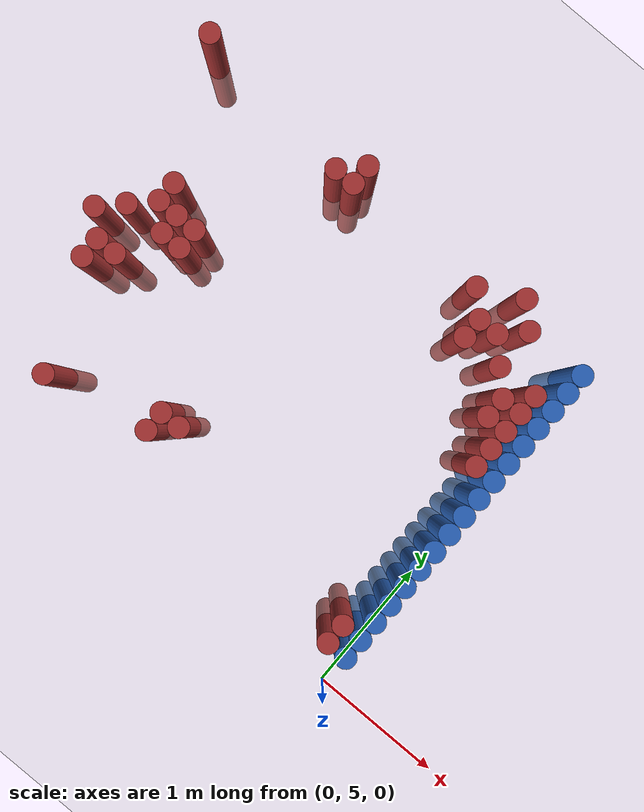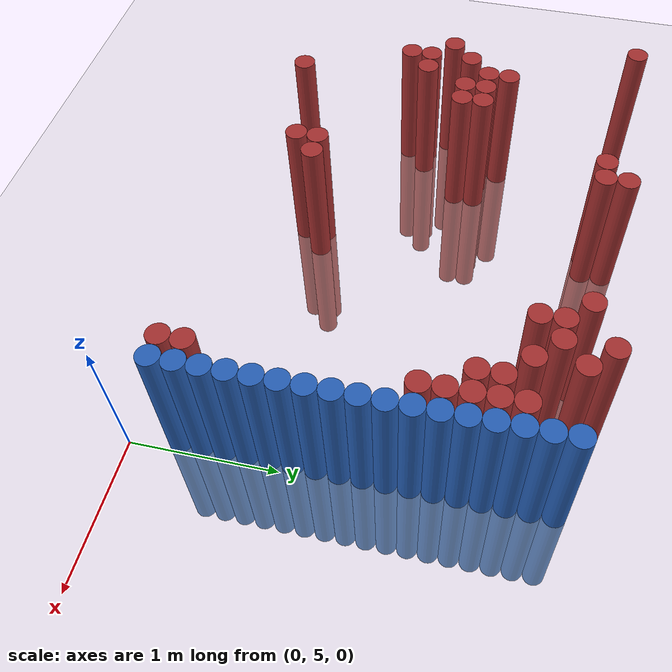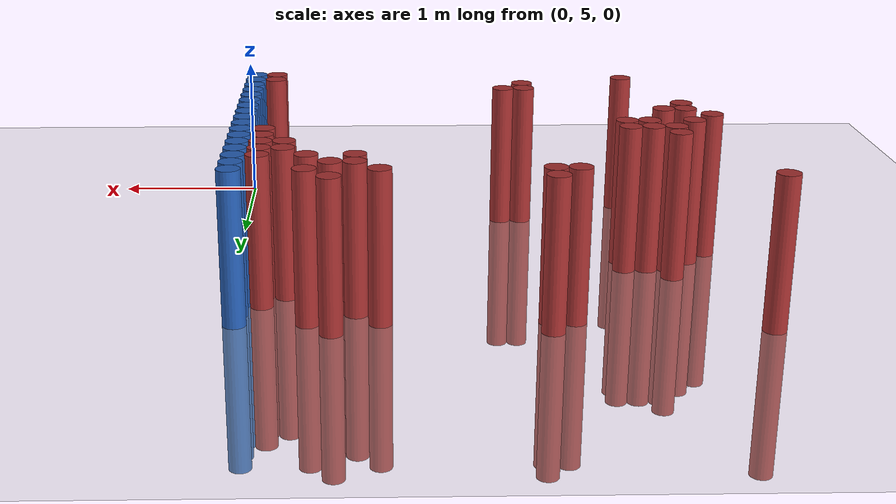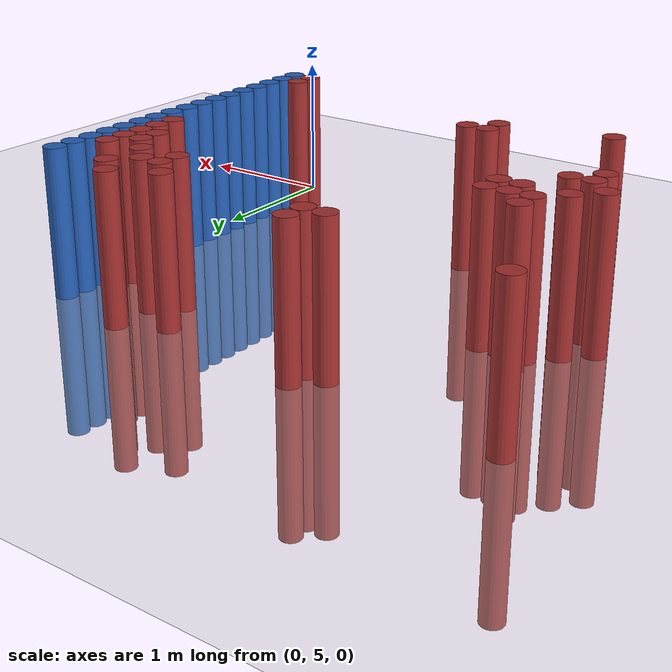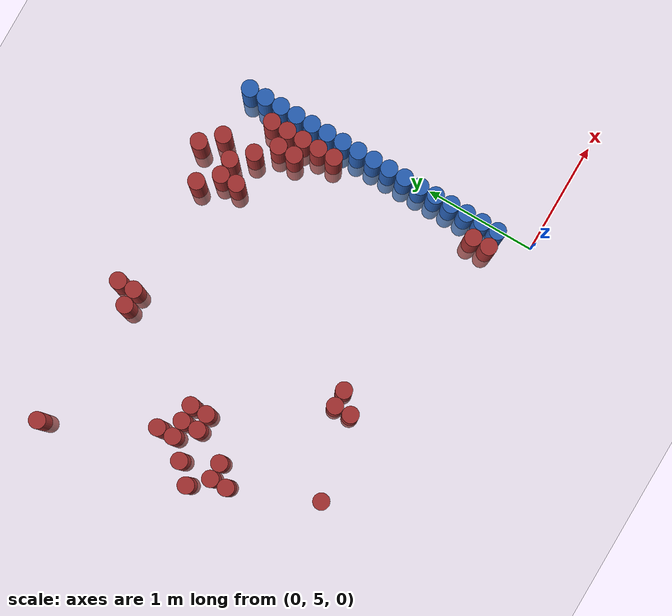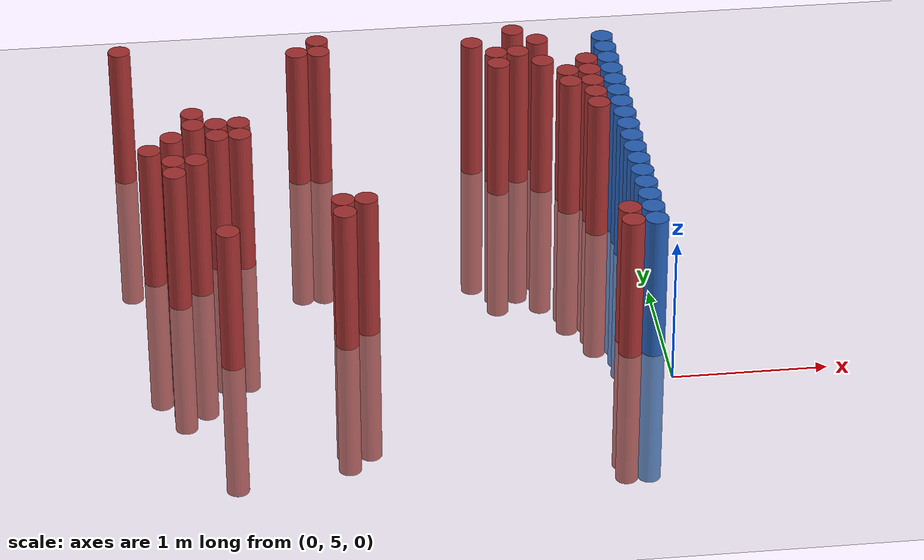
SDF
<sdf version="1.6">
 <world name="default">
  <model name="ground_plane">
   <static>1</static>
   <link name="link">
    <collision name="collision">
     <geometry><plane><normal>0 0 1</normal><size>100 100</size></plane></geometry>
     <surface><friction><ode><mu>100</mu><mu2>50</mu2></ode></friction></surface>
    </collision>
    <visual name="visual">
     <cast_shadows>0</cast_shadows>
     <geometry><plane><normal>0 0 1</normal><size>100 100</size></plane></geometry>
     <material>
      <script><uri>file://media/materials/scripts/gazebo.material</uri><name>Gazebo/Grey</name></script>
     </material>
    </visual>
   </link>
  </model>
  <model name="unit_cylinder_155">
   <static>1</static>
   <pose>-3.375000 7.875000 0.000000 0.000000 0.000000 0.000000</pose>
   <link name="link">
    <inertial>
     <mass>1</mass>
     <inertia><ixx>0.145833</ixx><ixy>0</ixy><ixz>0</ixz><iyy>0.145833</iyy><iyz>0</iyz><izz>0.125</izz></inertia>
    </inertial>
    <collision name="collision">
     <geometry><cylinder><radius>0.075000</radius><length>2</length></cylinder></geometry>
    </collision>
    <visual name="visual">
     <geometry><cylinder><radius>0.075000</radius><length>2</length></cylinder></geometry>
     <material>
      <ambient>0.648000 0.192000 0.192000 1</ambient>
      <diffuse>0.648000 0.192000 0.192000 1</diffuse>
     </material>
     <material>
      <script><name>Gazebo/Grey</name><uri>file://media/materials/scripts/gazebo.material</uri></script>
     </material>
    </visual>
   </link>
  </model>
  <model name="unit_cylinder_159">
   <static>1</static>
   <pose>-3.225000 6.525000 0.000000 0.000000 0.000000 0.000000</pose>
   <link name="link">
    <inertial>
     <mass>1</mass>
     <inertia><ixx>0.145833</ixx><ixy>0</ixy><ixz>0</ixz><iyy>0.145833</iyy><iyz>0</iyz><izz>0.125</izz></inertia>
    </inertial>
    <collision name="collision">
     <geometry><cylinder><radius>0.075000</radius><length>2</length></cylinder></geometry>
    </collision>
    <visual name="visual">
     <geometry><cylinder><radius>0.075000</radius><length>2</length></cylinder></geometry>
     <material>
      <ambient>0.648000 0.192000 0.192000 1</ambient>
      <diffuse>0.648000 0.192000 0.192000 1</diffuse>
     </material>
     <material>
      <script><name>Gazebo/Grey</name><uri>file://media/materials/scripts/gazebo.material</uri></script>
     </material>
    </visual>
   </link>
  </model>
  <model name="unit_cylinder_163">
   <static>1</static>
   <pose>-3.075000 6.225000 0.000000 0.000000 0.000000 0.000000</pose>
   <link name="link">
    <inertial>
     <mass>1</mass>
     <inertia><ixx>0.145833</ixx><ixy>0</ixy><ixz>0</ixz><iyy>0.145833</iyy><iyz>0</iyz><izz>0.125</izz></inertia>
    </inertial>
    <collision name="collision">
     <geometry><cylinder><radius>0.075000</radius><length>2</length></cylinder></geometry>
    </collision>
    <visual name="visual">
     <geometry><cylinder><radius>0.075000</radius><length>2</length></cylinder></geometry>
     <material>
      <ambient>0.648000 0.192000 0.192000 1</ambient>
      <diffuse>0.648000 0.192000 0.192000 1</diffuse>
     </material>
     <material>
      <script><name>Gazebo/Grey</name><uri>file://media/materials/scripts/gazebo.material</uri></script>
     </material>
    </visual>
   </link>
  </model>
  <model name="unit_cylinder_164">
   <static>1</static>
   <pose>-3.075000 6.375000 0.000000 0.000000 0.000000 0.000000</pose>
   <link name="link">
    <inertial>
     <mass>1</mass>
     <inertia><ixx>0.145833</ixx><ixy>0</ixy><ixz>0</ixz><iyy>0.145833</iyy><iyz>0</iyz><izz>0.125</izz></inertia>
    </inertial>
    <collision name="collision">
     <geometry><cylinder><radius>0.075000</radius><length>2</length></cylinder></geometry>
    </collision>
    <visual name="visual">
     <geometry><cylinder><radius>0.075000</radius><length>2</length></cylinder></geometry>
     <material>
      <ambient>0.648000 0.192000 0.192000 1</ambient>
      <diffuse>0.648000 0.192000 0.192000 1</diffuse>
     </material>
     <material>
      <script><name>Gazebo/Grey</name><uri>file://media/materials/scripts/gazebo.material</uri></script>
     </material>
    </visual>
   </link>
  </model>
  <model name="unit_cylinder_165">
   <static>1</static>
   <pose>-3.075000 6.675000 0.000000 0.000000 0.000000 0.000000</pose>
   <link name="link">
    <inertial>
     <mass>1</mass>
     <inertia><ixx>0.145833</ixx><ixy>0</ixy><ixz>0</ixz><iyy>0.145833</iyy><iyz>0</iyz><izz>0.125</izz></inertia>
    </inertial>
    <collision name="collision">
     <geometry><cylinder><radius>0.075000</radius><length>2</length></cylinder></geometry>
    </collision>
    <visual name="visual">
     <geometry><cylinder><radius>0.075000</radius><length>2</length></cylinder></geometry>
     <material>
      <ambient>0.648000 0.192000 0.192000 1</ambient>
      <diffuse>0.648000 0.192000 0.192000 1</diffuse>
     </material>
     <material>
      <script><name>Gazebo/Grey</name><uri>file://media/materials/scripts/gazebo.material</uri></script>
     </material>
    </visual>
   </link>
  </model>
  <model name="unit_cylinder_169">
   <static>1</static>
   <pose>-2.925000 6.375000 0.000000 0.000000 0.000000 0.000000</pose>
   <link name="link">
    <inertial>
     <mass>1</mass>
     <inertia><ixx>0.145833</ixx><ixy>0</ixy><ixz>0</ixz><iyy>0.145833</iyy><iyz>0</iyz><izz>0.125</izz></inertia>
    </inertial>
    <collision name="collision">
     <geometry><cylinder><radius>0.075000</radius><length>2</length></cylinder></geometry>
    </collision>
    <visual name="visual">
     <geometry><cylinder><radius>0.075000</radius><length>2</length></cylinder></geometry>
     <material>
      <ambient>0.648000 0.192000 0.192000 1</ambient>
      <diffuse>0.648000 0.192000 0.192000 1</diffuse>
     </material>
     <material>
      <script><name>Gazebo/Grey</name><uri>file://media/materials/scripts/gazebo.material</uri></script>
     </material>
    </visual>
   </link>
  </model>
  <model name="unit_cylinder_170">
   <static>1</static>
   <pose>-2.925000 6.825000 0.000000 0.000000 0.000000 0.000000</pose>
   <link name="link">
    <inertial>
     <mass>1</mass>
     <inertia><ixx>0.145833</ixx><ixy>0</ixy><ixz>0</ixz><iyy>0.145833</iyy><iyz>0</iyz><izz>0.125</izz></inertia>
    </inertial>
    <collision name="collision">
     <geometry><cylinder><radius>0.075000</radius><length>2</length></cylinder></geometry>
    </collision>
    <visual name="visual">
     <geometry><cylinder><radius>0.075000</radius><length>2</length></cylinder></geometry>
     <material>
      <ambient>0.648000 0.192000 0.192000 1</ambient>
      <diffuse>0.648000 0.192000 0.192000 1</diffuse>
     </material>
     <material>
      <script><name>Gazebo/Grey</name><uri>file://media/materials/scripts/gazebo.material</uri></script>
     </material>
    </visual>
   </link>
  </model>
  <model name="unit_cylinder_171">
   <static>1</static>
   <pose>-2.925000 6.975000 0.000000 0.000000 0.000000 0.000000</pose>
   <link name="link">
    <inertial>
     <mass>1</mass>
     <inertia><ixx>0.145833</ixx><ixy>0</ixy><ixz>0</ixz><iyy>0.145833</iyy><iyz>0</iyz><izz>0.125</izz></inertia>
    </inertial>
    <collision name="collision">
     <geometry><cylinder><radius>0.075000</radius><length>2</length></cylinder></geometry>
    </collision>
    <visual name="visual">
     <geometry><cylinder><radius>0.075000</radius><length>2</length></cylinder></geometry>
     <material>
      <ambient>0.648000 0.192000 0.192000 1</ambient>
      <diffuse>0.648000 0.192000 0.192000 1</diffuse>
     </material>
     <material>
      <script><name>Gazebo/Grey</name><uri>file://media/materials/scripts/gazebo.material</uri></script>
     </material>
    </visual>
   </link>
  </model>
  <model name="unit_cylinder_174">
   <static>1</static>
   <pose>-2.775000 5.475000 0.000000 0.000000 0.000000 0.000000</pose>
   <link name="link">
    <inertial>
     <mass>1</mass>
     <inertia><ixx>0.145833</ixx><ixy>0</ixy><ixz>0</ixz><iyy>0.145833</iyy><iyz>0</iyz><izz>0.125</izz></inertia>
    </inertial>
    <collision name="collision">
     <geometry><cylinder><radius>0.075000</radius><length>2</length></cylinder></geometry>
    </collision>
    <visual name="visual">
     <geometry><cylinder><radius>0.075000</radius><length>2</length></cylinder></geometry>
     <material>
      <ambient>0.648000 0.192000 0.192000 1</ambient>
      <diffuse>0.648000 0.192000 0.192000 1</diffuse>
     </material>
     <material>
      <script><name>Gazebo/Grey</name><uri>file://media/materials/scripts/gazebo.material</uri></script>
     </material>
    </visual>
   </link>
  </model>
  <model name="unit_cylinder_175">
   <static>1</static>
   <pose>-2.775000 6.675000 0.000000 0.000000 0.000000 0.000000</pose>
   <link name="link">
    <inertial>
     <mass>1</mass>
     <inertia><ixx>0.145833</ixx><ixy>0</ixy><ixz>0</ixz><iyy>0.145833</iyy><iyz>0</iyz><izz>0.125</izz></inertia>
    </inertial>
    <collision name="collision">
     <geometry><cylinder><radius>0.075000</radius><length>2</length></cylinder></geometry>
    </collision>
    <visual name="visual">
     <geometry><cylinder><radius>0.075000</radius><length>2</length></cylinder></geometry>
     <material>
      <ambient>0.648000 0.192000 0.192000 1</ambient>
      <diffuse>0.648000 0.192000 0.192000 1</diffuse>
     </material>
     <material>
      <script><name>Gazebo/Grey</name><uri>file://media/materials/scripts/gazebo.material</uri></script>
     </material>
    </visual>
   </link>
  </model>
  <model name="unit_cylinder_176">
   <static>1</static>
   <pose>-2.775000 6.825000 0.000000 0.000000 0.000000 0.000000</pose>
   <link name="link">
    <inertial>
     <mass>1</mass>
     <inertia><ixx>0.145833</ixx><ixy>0</ixy><ixz>0</ixz><iyy>0.145833</iyy><iyz>0</iyz><izz>0.125</izz></inertia>
    </inertial>
    <collision name="collision">
     <geometry><cylinder><radius>0.075000</radius><length>2</length></cylinder></geometry>
    </collision>
    <visual name="visual">
     <geometry><cylinder><radius>0.075000</radius><length>2</length></cylinder></geometry>
     <material>
      <ambient>0.648000 0.192000 0.192000 1</ambient>
      <diffuse>0.648000 0.192000 0.192000 1</diffuse>
     </material>
     <material>
      <script><name>Gazebo/Grey</name><uri>file://media/materials/scripts/gazebo.material</uri></script>
     </material>
    </visual>
   </link>
  </model>
  <model name="unit_cylinder_178">
   <static>1</static>
   <pose>-2.625000 6.675000 0.000000 0.000000 0.000000 0.000000</pose>
   <link name="link">
    <inertial>
     <mass>1</mass>
     <inertia><ixx>0.145833</ixx><ixy>0</ixy><ixz>0</ixz><iyy>0.145833</iyy><iyz>0</iyz><izz>0.125</izz></inertia>
    </inertial>
    <collision name="collision">
     <geometry><cylinder><radius>0.075000</radius><length>2</length></cylinder></geometry>
    </collision>
    <visual name="visual">
     <geometry><cylinder><radius>0.075000</radius><length>2</length></cylinder></geometry>
     <material>
      <ambient>0.648000 0.192000 0.192000 1</ambient>
      <diffuse>0.648000 0.192000 0.192000 1</diffuse>
     </material>
     <material>
      <script><name>Gazebo/Grey</name><uri>file://media/materials/scripts/gazebo.material</uri></script>
     </material>
    </visual>
   </link>
  </model>
  <model name="unit_cylinder_179">
   <static>1</static>
   <pose>-2.625000 6.825000 0.000000 0.000000 0.000000 0.000000</pose>
   <link name="link">
    <inertial>
     <mass>1</mass>
     <inertia><ixx>0.145833</ixx><ixy>0</ixy><ixz>0</ixz><iyy>0.145833</iyy><iyz>0</iyz><izz>0.125</izz></inertia>
    </inertial>
    <collision name="collision">
     <geometry><cylinder><radius>0.075000</radius><length>2</length></cylinder></geometry>
    </collision>
    <visual name="visual">
     <geometry><cylinder><radius>0.075000</radius><length>2</length></cylinder></geometry>
     <material>
      <ambient>0.648000 0.192000 0.192000 1</ambient>
      <diffuse>0.648000 0.192000 0.192000 1</diffuse>
     </material>
     <material>
      <script><name>Gazebo/Grey</name><uri>file://media/materials/scripts/gazebo.material</uri></script>
     </material>
    </visual>
   </link>
  </model>
  <model name="unit_cylinder_186">
   <static>1</static>
   <pose>-2.175000 7.725000 0.000000 0.000000 0.000000 0.000000</pose>
   <link name="link">
    <inertial>
     <mass>1</mass>
     <inertia><ixx>0.145833</ixx><ixy>0</ixy><ixz>0</ixz><iyy>0.145833</iyy><iyz>0</iyz><izz>0.125</izz></inertia>
    </inertial>
    <collision name="collision">
     <geometry><cylinder><radius>0.075000</radius><length>2</length></cylinder></geometry>
    </collision>
    <visual name="visual">
     <geometry><cylinder><radius>0.075000</radius><length>2</length></cylinder></geometry>
     <material>
      <ambient>0.648000 0.192000 0.192000 1</ambient>
      <diffuse>0.648000 0.192000 0.192000 1</diffuse>
     </material>
     <material>
      <script><name>Gazebo/Grey</name><uri>file://media/materials/scripts/gazebo.material</uri></script>
     </material>
    </visual>
   </link>
  </model>
  <model name="unit_cylinder_192">
   <static>1</static>
   <pose>-2.025000 5.625000 0.000000 0.000000 0.000000 0.000000</pose>
   <link name="link">
    <inertial>
     <mass>1</mass>
     <inertia><ixx>0.145833</ixx><ixy>0</ixy><ixz>0</ixz><iyy>0.145833</iyy><iyz>0</iyz><izz>0.125</izz></inertia>
    </inertial>
    <collision name="collision">
     <geometry><cylinder><radius>0.075000</radius><length>2</length></cylinder></geometry>
    </collision>
    <visual name="visual">
     <geometry><cylinder><radius>0.075000</radius><length>2</length></cylinder></geometry>
     <material>
      <ambient>0.648000 0.192000 0.192000 1</ambient>
      <diffuse>0.648000 0.192000 0.192000 1</diffuse>
     </material>
     <material>
      <script><name>Gazebo/Grey</name><uri>file://media/materials/scripts/gazebo.material</uri></script>
     </material>
    </visual>
   </link>
  </model>
  <model name="unit_cylinder_193">
   <static>1</static>
   <pose>-2.025000 5.775000 0.000000 0.000000 0.000000 0.000000</pose>
   <link name="link">
    <inertial>
     <mass>1</mass>
     <inertia><ixx>0.145833</ixx><ixy>0</ixy><ixz>0</ixz><iyy>0.145833</iyy><iyz>0</iyz><izz>0.125</izz></inertia>
    </inertial>
    <collision name="collision">
     <geometry><cylinder><radius>0.075000</radius><length>2</length></cylinder></geometry>
    </collision>
    <visual name="visual">
     <geometry><cylinder><radius>0.075000</radius><length>2</length></cylinder></geometry>
     <material>
      <ambient>0.648000 0.192000 0.192000 1</ambient>
      <diffuse>0.648000 0.192000 0.192000 1</diffuse>
     </material>
     <material>
      <script><name>Gazebo/Grey</name><uri>file://media/materials/scripts/gazebo.material</uri></script>
     </material>
    </visual>
   </link>
  </model>
  <model name="unit_cylinder_194">
   <static>1</static>
   <pose>-2.025000 7.725000 0.000000 0.000000 0.000000 0.000000</pose>
   <link name="link">
    <inertial>
     <mass>1</mass>
     <inertia><ixx>0.145833</ixx><ixy>0</ixy><ixz>0</ixz><iyy>0.145833</iyy><iyz>0</iyz><izz>0.125</izz></inertia>
    </inertial>
    <collision name="collision">
     <geometry><cylinder><radius>0.075000</radius><length>2</length></cylinder></geometry>
    </collision>
    <visual name="visual">
     <geometry><cylinder><radius>0.075000</radius><length>2</length></cylinder></geometry>
     <material>
      <ambient>0.648000 0.192000 0.192000 1</ambient>
      <diffuse>0.648000 0.192000 0.192000 1</diffuse>
     </material>
     <material>
      <script><name>Gazebo/Grey</name><uri>file://media/materials/scripts/gazebo.material</uri></script>
     </material>
    </visual>
   </link>
  </model>
  <model name="unit_cylinder_195">
   <static>1</static>
   <pose>-2.025000 7.875000 0.000000 0.000000 0.000000 0.000000</pose>
   <link name="link">
    <inertial>
     <mass>1</mass>
     <inertia><ixx>0.145833</ixx><ixy>0</ixy><ixz>0</ixz><iyy>0.145833</iyy><iyz>0</iyz><izz>0.125</izz></inertia>
    </inertial>
    <collision name="collision">
     <geometry><cylinder><radius>0.075000</radius><length>2</length></cylinder></geometry>
    </collision>
    <visual name="visual">
     <geometry><cylinder><radius>0.075000</radius><length>2</length></cylinder></geometry>
     <material>
      <ambient>0.648000 0.192000 0.192000 1</ambient>
      <diffuse>0.648000 0.192000 0.192000 1</diffuse>
     </material>
     <material>
      <script><name>Gazebo/Grey</name><uri>file://media/materials/scripts/gazebo.material</uri></script>
     </material>
    </visual>
   </link>
  </model>
  <model name="unit_cylinder_201">
   <static>1</static>
   <pose>-1.875000 5.775000 0.000000 0.000000 0.000000 0.000000</pose>
   <link name="link">
    <inertial>
     <mass>1</mass>
     <inertia><ixx>0.145833</ixx><ixy>0</ixy><ixz>0</ixz><iyy>0.145833</iyy><iyz>0</iyz><izz>0.125</izz></inertia>
    </inertial>
    <collision name="collision">
     <geometry><cylinder><radius>0.075000</radius><length>2</length></cylinder></geometry>
    </collision>
    <visual name="visual">
     <geometry><cylinder><radius>0.075000</radius><length>2</length></cylinder></geometry>
     <material>
      <ambient>0.648000 0.192000 0.192000 1</ambient>
      <diffuse>0.648000 0.192000 0.192000 1</diffuse>
     </material>
     <material>
      <script><name>Gazebo/Grey</name><uri>file://media/materials/scripts/gazebo.material</uri></script>
     </material>
    </visual>
   </link>
  </model>
  <model name="unit_cylinder_203">
   <static>1</static>
   <pose>-0.975000 7.725000 0.000000 0.000000 0.000000 0.000000</pose>
   <link name="link">
    <inertial>
     <mass>1</mass>
     <inertia><ixx>0.145833</ixx><ixy>0</ixy><ixz>0</ixz><iyy>0.145833</iyy><iyz>0</iyz><izz>0.125</izz></inertia>
    </inertial>
    <collision name="collision">
     <geometry><cylinder><radius>0.075000</radius><length>2</length></cylinder></geometry>
    </collision>
    <visual name="visual">
     <geometry><cylinder><radius>0.075000</radius><length>2</length></cylinder></geometry>
     <material>
      <ambient>0.648000 0.192000 0.192000 1</ambient>
      <diffuse>0.648000 0.192000 0.192000 1</diffuse>
     </material>
     <material>
      <script><name>Gazebo/Grey</name><uri>file://media/materials/scripts/gazebo.material</uri></script>
     </material>
    </visual>
   </link>
  </model>
  <model name="unit_cylinder_204">
   <static>1</static>
   <pose>-0.825000 7.425000 0.000000 0.000000 0.000000 0.000000</pose>
   <link name="link">
    <inertial>
     <mass>1</mass>
     <inertia><ixx>0.145833</ixx><ixy>0</ixy><ixz>0</ixz><iyy>0.145833</iyy><iyz>0</iyz><izz>0.125</izz></inertia>
    </inertial>
    <collision name="collision">
     <geometry><cylinder><radius>0.075000</radius><length>2</length></cylinder></geometry>
    </collision>
    <visual name="visual">
     <geometry><cylinder><radius>0.075000</radius><length>2</length></cylinder></geometry>
     <material>
      <ambient>0.648000 0.192000 0.192000 1</ambient>
      <diffuse>0.648000 0.192000 0.192000 1</diffuse>
     </material>
     <material>
      <script><name>Gazebo/Grey</name><uri>file://media/materials/scripts/gazebo.material</uri></script>
     </material>
    </visual>
   </link>
  </model>
  <model name="unit_cylinder_205">
   <static>1</static>
   <pose>-0.825000 7.575000 0.000000 0.000000 0.000000 0.000000</pose>
   <link name="link">
    <inertial>
     <mass>1</mass>
     <inertia><ixx>0.145833</ixx><ixy>0</ixy><ixz>0</ixz><iyy>0.145833</iyy><iyz>0</iyz><izz>0.125</izz></inertia>
    </inertial>
    <collision name="collision">
     <geometry><cylinder><radius>0.075000</radius><length>2</length></cylinder></geometry>
    </collision>
    <visual name="visual">
     <geometry><cylinder><radius>0.075000</radius><length>2</length></cylinder></geometry>
     <material>
      <ambient>0.648000 0.192000 0.192000 1</ambient>
      <diffuse>0.648000 0.192000 0.192000 1</diffuse>
     </material>
     <material>
      <script><name>Gazebo/Grey</name><uri>file://media/materials/scripts/gazebo.material</uri></script>
     </material>
    </visual>
   </link>
  </model>
  <model name="unit_cylinder_208">
   <static>1</static>
   <pose>-0.675000 7.575000 0.000000 0.000000 0.000000 0.000000</pose>
   <link name="link">
    <inertial>
     <mass>1</mass>
     <inertia><ixx>0.145833</ixx><ixy>0</ixy><ixz>0</ixz><iyy>0.145833</iyy><iyz>0</iyz><izz>0.125</izz></inertia>
    </inertial>
    <collision name="collision">
     <geometry><cylinder><radius>0.075000</radius><length>2</length></cylinder></geometry>
    </collision>
    <visual name="visual">
     <geometry><cylinder><radius>0.075000</radius><length>2</length></cylinder></geometry>
     <material>
      <ambient>0.648000 0.192000 0.192000 1</ambient>
      <diffuse>0.648000 0.192000 0.192000 1</diffuse>
     </material>
     <material>
      <script><name>Gazebo/Grey</name><uri>file://media/materials/scripts/gazebo.material</uri></script>
     </material>
    </visual>
   </link>
  </model>
  <model name="unit_cylinder_209">
   <static>1</static>
   <pose>-0.675000 7.875000 0.000000 0.000000 0.000000 0.000000</pose>
   <link name="link">
    <inertial>
     <mass>1</mass>
     <inertia><ixx>0.145833</ixx><ixy>0</ixy><ixz>0</ixz><iyy>0.145833</iyy><iyz>0</iyz><izz>0.125</izz></inertia>
    </inertial>
    <collision name="collision">
     <geometry><cylinder><radius>0.075000</radius><length>2</length></cylinder></geometry>
    </collision>
    <visual name="visual">
     <geometry><cylinder><radius>0.075000</radius><length>2</length></cylinder></geometry>
     <material>
      <ambient>0.648000 0.192000 0.192000 1</ambient>
      <diffuse>0.648000 0.192000 0.192000 1</diffuse>
     </material>
     <material>
      <script><name>Gazebo/Grey</name><uri>file://media/materials/scripts/gazebo.material</uri></script>
     </material>
    </visual>
   </link>
  </model>
  <model name="unit_cylinder_211">
   <static>1</static>
   <pose>-0.525000 7.425000 0.000000 0.000000 0.000000 0.000000</pose>
   <link name="link">
    <inertial>
     <mass>1</mass>
     <inertia><ixx>0.145833</ixx><ixy>0</ixy><ixz>0</ixz><iyy>0.145833</iyy><iyz>0</iyz><izz>0.125</izz></inertia>
    </inertial>
    <collision name="collision">
     <geometry><cylinder><radius>0.075000</radius><length>2</length></cylinder></geometry>
    </collision>
    <visual name="visual">
     <geometry><cylinder><radius>0.075000</radius><length>2</length></cylinder></geometry>
     <material>
      <ambient>0.648000 0.192000 0.192000 1</ambient>
      <diffuse>0.648000 0.192000 0.192000 1</diffuse>
     </material>
     <material>
      <script><name>Gazebo/Grey</name><uri>file://media/materials/scripts/gazebo.material</uri></script>
     </material>
    </visual>
   </link>
  </model>
  <model name="unit_cylinder_212">
   <static>1</static>
   <pose>-0.525000 7.725000 0.000000 0.000000 0.000000 0.000000</pose>
   <link name="link">
    <inertial>
     <mass>1</mass>
     <inertia><ixx>0.145833</ixx><ixy>0</ixy><ixz>0</ixz><iyy>0.145833</iyy><iyz>0</iyz><izz>0.125</izz></inertia>
    </inertial>
    <collision name="collision">
     <geometry><cylinder><radius>0.075000</radius><length>2</length></cylinder></geometry>
    </collision>
    <visual name="visual">
     <geometry><cylinder><radius>0.075000</radius><length>2</length></cylinder></geometry>
     <material>
      <ambient>0.648000 0.192000 0.192000 1</ambient>
      <diffuse>0.648000 0.192000 0.192000 1</diffuse>
     </material>
     <material>
      <script><name>Gazebo/Grey</name><uri>file://media/materials/scripts/gazebo.material</uri></script>
     </material>
    </visual>
   </link>
  </model>
  <model name="unit_cylinder_213">
   <static>1</static>
   <pose>-0.375000 7.125000 0.000000 0.000000 0.000000 0.000000</pose>
   <link name="link">
    <inertial>
     <mass>1</mass>
     <inertia><ixx>0.145833</ixx><ixy>0</ixy><ixz>0</ixz><iyy>0.145833</iyy><iyz>0</iyz><izz>0.125</izz></inertia>
    </inertial>
    <collision name="collision">
     <geometry><cylinder><radius>0.075000</radius><length>2</length></cylinder></geometry>
    </collision>
    <visual name="visual">
     <geometry><cylinder><radius>0.075000</radius><length>2</length></cylinder></geometry>
     <material>
      <ambient>0.648000 0.192000 0.192000 1</ambient>
      <diffuse>0.648000 0.192000 0.192000 1</diffuse>
     </material>
     <material>
      <script><name>Gazebo/Grey</name><uri>file://media/materials/scripts/gazebo.material</uri></script>
     </material>
    </visual>
   </link>
  </model>
  <model name="unit_cylinder_214">
   <static>1</static>
   <pose>-0.375000 7.275000 0.000000 0.000000 0.000000 0.000000</pose>
   <link name="link">
    <inertial>
     <mass>1</mass>
     <inertia><ixx>0.145833</ixx><ixy>0</ixy><ixz>0</ixz><iyy>0.145833</iyy><iyz>0</iyz><izz>0.125</izz></inertia>
    </inertial>
    <collision name="collision">
     <geometry><cylinder><radius>0.075000</radius><length>2</length></cylinder></geometry>
    </collision>
    <visual name="visual">
     <geometry><cylinder><radius>0.075000</radius><length>2</length></cylinder></geometry>
     <material>
      <ambient>0.648000 0.192000 0.192000 1</ambient>
      <diffuse>0.648000 0.192000 0.192000 1</diffuse>
     </material>
     <material>
      <script><name>Gazebo/Grey</name><uri>file://media/materials/scripts/gazebo.material</uri></script>
     </material>
    </visual>
   </link>
  </model>
  <model name="unit_cylinder_218">
   <static>1</static>
   <pose>-0.225000 5.325000 0.000000 0.000000 0.000000 0.000000</pose>
   <link name="link">
    <inertial>
     <mass>1</mass>
     <inertia><ixx>0.145833</ixx><ixy>0</ixy><ixz>0</ixz><iyy>0.145833</iyy><iyz>0</iyz><izz>0.125</izz></inertia>
    </inertial>
    <collision name="collision">
     <geometry><cylinder><radius>0.075000</radius><length>2</length></cylinder></geometry>
    </collision>
    <visual name="visual">
     <geometry><cylinder><radius>0.075000</radius><length>2</length></cylinder></geometry>
     <material>
      <ambient>0.648000 0.192000 0.192000 1</ambient>
      <diffuse>0.648000 0.192000 0.192000 1</diffuse>
     </material>
     <material>
      <script><name>Gazebo/Grey</name><uri>file://media/materials/scripts/gazebo.material</uri></script>
     </material>
    </visual>
   </link>
  </model>
  <model name="unit_cylinder_219">
   <static>1</static>
   <pose>-0.225000 5.475000 0.000000 0.000000 0.000000 0.000000</pose>
   <link name="link">
    <inertial>
     <mass>1</mass>
     <inertia><ixx>0.145833</ixx><ixy>0</ixy><ixz>0</ixz><iyy>0.145833</iyy><iyz>0</iyz><izz>0.125</izz></inertia>
    </inertial>
    <collision name="collision">
     <geometry><cylinder><radius>0.075000</radius><length>2</length></cylinder></geometry>
    </collision>
    <visual name="visual">
     <geometry><cylinder><radius>0.075000</radius><length>2</length></cylinder></geometry>
     <material>
      <ambient>0.648000 0.192000 0.192000 1</ambient>
      <diffuse>0.648000 0.192000 0.192000 1</diffuse>
     </material>
     <material>
      <script><name>Gazebo/Grey</name><uri>file://media/materials/scripts/gazebo.material</uri></script>
     </material>
    </visual>
   </link>
  </model>
  <model name="unit_cylinder_220">
   <static>1</static>
   <pose>-0.225000 6.825000 0.000000 0.000000 0.000000 0.000000</pose>
   <link name="link">
    <inertial>
     <mass>1</mass>
     <inertia><ixx>0.145833</ixx><ixy>0</ixy><ixz>0</ixz><iyy>0.145833</iyy><iyz>0</iyz><izz>0.125</izz></inertia>
    </inertial>
    <collision name="collision">
     <geometry><cylinder><radius>0.075000</radius><length>2</length></cylinder></geometry>
    </collision>
    <visual name="visual">
     <geometry><cylinder><radius>0.075000</radius><length>2</length></cylinder></geometry>
     <material>
      <ambient>0.648000 0.192000 0.192000 1</ambient>
      <diffuse>0.648000 0.192000 0.192000 1</diffuse>
     </material>
     <material>
      <script><name>Gazebo/Grey</name><uri>file://media/materials/scripts/gazebo.material</uri></script>
     </material>
    </visual>
   </link>
  </model>
  <model name="unit_cylinder_221">
   <static>1</static>
   <pose>-0.225000 6.975000 0.000000 0.000000 0.000000 0.000000</pose>
   <link name="link">
    <inertial>
     <mass>1</mass>
     <inertia><ixx>0.145833</ixx><ixy>0</ixy><ixz>0</ixz><iyy>0.145833</iyy><iyz>0</iyz><izz>0.125</izz></inertia>
    </inertial>
    <collision name="collision">
     <geometry><cylinder><radius>0.075000</radius><length>2</length></cylinder></geometry>
    </collision>
    <visual name="visual">
     <geometry><cylinder><radius>0.075000</radius><length>2</length></cylinder></geometry>
     <material>
      <ambient>0.648000 0.192000 0.192000 1</ambient>
      <diffuse>0.648000 0.192000 0.192000 1</diffuse>
     </material>
     <material>
      <script><name>Gazebo/Grey</name><uri>file://media/materials/scripts/gazebo.material</uri></script>
     </material>
    </visual>
   </link>
  </model>
  <model name="unit_cylinder_222">
   <static>1</static>
   <pose>-0.225000 7.125000 0.000000 0.000000 0.000000 0.000000</pose>
   <link name="link">
    <inertial>
     <mass>1</mass>
     <inertia><ixx>0.145833</ixx><ixy>0</ixy><ixz>0</ixz><iyy>0.145833</iyy><iyz>0</iyz><izz>0.125</izz></inertia>
    </inertial>
    <collision name="collision">
     <geometry><cylinder><radius>0.075000</radius><length>2</length></cylinder></geometry>
    </collision>
    <visual name="visual">
     <geometry><cylinder><radius>0.075000</radius><length>2</length></cylinder></geometry>
     <material>
      <ambient>0.648000 0.192000 0.192000 1</ambient>
      <diffuse>0.648000 0.192000 0.192000 1</diffuse>
     </material>
     <material>
      <script><name>Gazebo/Grey</name><uri>file://media/materials/scripts/gazebo.material</uri></script>
     </material>
    </visual>
   </link>
  </model>
  <model name="unit_cylinder_223">
   <static>1</static>
   <pose>-0.225000 7.275000 0.000000 0.000000 0.000000 0.000000</pose>
   <link name="link">
    <inertial>
     <mass>1</mass>
     <inertia><ixx>0.145833</ixx><ixy>0</ixy><ixz>0</ixz><iyy>0.145833</iyy><iyz>0</iyz><izz>0.125</izz></inertia>
    </inertial>
    <collision name="collision">
     <geometry><cylinder><radius>0.075000</radius><length>2</length></cylinder></geometry>
    </collision>
    <visual name="visual">
     <geometry><cylinder><radius>0.075000</radius><length>2</length></cylinder></geometry>
     <material>
      <ambient>0.648000 0.192000 0.192000 1</ambient>
      <diffuse>0.648000 0.192000 0.192000 1</diffuse>
     </material>
     <material>
      <script><name>Gazebo/Grey</name><uri>file://media/materials/scripts/gazebo.material</uri></script>
     </material>
    </visual>
   </link>
  </model>
  <model name="unit_cylinder_224">
   <static>1</static>
   <pose>-0.225000 7.425000 0.000000 0.000000 0.000000 0.000000</pose>
   <link name="link">
    <inertial>
     <mass>1</mass>
     <inertia><ixx>0.145833</ixx><ixy>0</ixy><ixz>0</ixz><iyy>0.145833</iyy><iyz>0</iyz><izz>0.125</izz></inertia>
    </inertial>
    <collision name="collision">
     <geometry><cylinder><radius>0.075000</radius><length>2</length></cylinder></geometry>
    </collision>
    <visual name="visual">
     <geometry><cylinder><radius>0.075000</radius><length>2</length></cylinder></geometry>
     <material>
      <ambient>0.648000 0.192000 0.192000 1</ambient>
      <diffuse>0.648000 0.192000 0.192000 1</diffuse>
     </material>
     <material>
      <script><name>Gazebo/Grey</name><uri>file://media/materials/scripts/gazebo.material</uri></script>
     </material>
    </visual>
   </link>
  </model>
  <model name="unit_cylinder_235">
   <static>1</static>
   <pose>-0.075000 5.325000 0.000000 0.000000 0.000000 0.000000</pose>
   <link name="link">
    <inertial>
     <mass>1</mass>
     <inertia><ixx>0.145833</ixx><ixy>0</ixy><ixz>0</ixz><iyy>0.145833</iyy><iyz>0</iyz><izz>0.125</izz></inertia>
    </inertial>
    <collision name="collision">
     <geometry><cylinder><radius>0.075000</radius><length>2</length></cylinder></geometry>
    </collision>
    <visual name="visual">
     <geometry><cylinder><radius>0.075000</radius><length>2</length></cylinder></geometry>
     <material>
      <ambient>0.152000 0.379000 0.720000 1</ambient>
      <diffuse>0.152000 0.379000 0.720000 1</diffuse>
     </material>
     <material>
      <script><name>Gazebo/Grey</name><uri>file://media/materials/scripts/gazebo.material</uri></script>
     </material>
    </visual>
   </link>
  </model>
  <model name="unit_cylinder_236">
   <static>1</static>
   <pose>-0.075000 5.475000 0.000000 0.000000 0.000000 0.000000</pose>
   <link name="link">
    <inertial>
     <mass>1</mass>
     <inertia><ixx>0.145833</ixx><ixy>0</ixy><ixz>0</ixz><iyy>0.145833</iyy><iyz>0</iyz><izz>0.125</izz></inertia>
    </inertial>
    <collision name="collision">
     <geometry><cylinder><radius>0.075000</radius><length>2</length></cylinder></geometry>
    </collision>
    <visual name="visual">
     <geometry><cylinder><radius>0.075000</radius><length>2</length></cylinder></geometry>
     <material>
      <ambient>0.152000 0.379000 0.720000 1</ambient>
      <diffuse>0.152000 0.379000 0.720000 1</diffuse>
     </material>
     <material>
      <script><name>Gazebo/Grey</name><uri>file://media/materials/scripts/gazebo.material</uri></script>
     </material>
    </visual>
   </link>
  </model>
  <model name="unit_cylinder_237">
   <static>1</static>
   <pose>-0.075000 5.625000 0.000000 0.000000 0.000000 0.000000</pose>
   <link name="link">
    <inertial>
     <mass>1</mass>
     <inertia><ixx>0.145833</ixx><ixy>0</ixy><ixz>0</ixz><iyy>0.145833</iyy><iyz>0</iyz><izz>0.125</izz></inertia>
    </inertial>
    <collision name="collision">
     <geometry><cylinder><radius>0.075000</radius><length>2</length></cylinder></geometry>
    </collision>
    <visual name="visual">
     <geometry><cylinder><radius>0.075000</radius><length>2</length></cylinder></geometry>
     <material>
      <ambient>0.152000 0.379000 0.720000 1</ambient>
      <diffuse>0.152000 0.379000 0.720000 1</diffuse>
     </material>
     <material>
      <script><name>Gazebo/Grey</name><uri>file://media/materials/scripts/gazebo.material</uri></script>
     </material>
    </visual>
   </link>
  </model>
  <model name="unit_cylinder_238">
   <static>1</static>
   <pose>-0.075000 5.775000 0.000000 0.000000 0.000000 0.000000</pose>
   <link name="link">
    <inertial>
     <mass>1</mass>
     <inertia><ixx>0.145833</ixx><ixy>0</ixy><ixz>0</ixz><iyy>0.145833</iyy><iyz>0</iyz><izz>0.125</izz></inertia>
    </inertial>
    <collision name="collision">
     <geometry><cylinder><radius>0.075000</radius><length>2</length></cylinder></geometry>
    </collision>
    <visual name="visual">
     <geometry><cylinder><radius>0.075000</radius><length>2</length></cylinder></geometry>
     <material>
      <ambient>0.152000 0.379000 0.720000 1</ambient>
      <diffuse>0.152000 0.379000 0.720000 1</diffuse>
     </material>
     <material>
      <script><name>Gazebo/Grey</name><uri>file://media/materials/scripts/gazebo.material</uri></script>
     </material>
    </visual>
   </link>
  </model>
  <model name="unit_cylinder_239">
   <static>1</static>
   <pose>-0.075000 5.925000 0.000000 0.000000 0.000000 0.000000</pose>
   <link name="link">
    <inertial>
     <mass>1</mass>
     <inertia><ixx>0.145833</ixx><ixy>0</ixy><ixz>0</ixz><iyy>0.145833</iyy><iyz>0</iyz><izz>0.125</izz></inertia>
    </inertial>
    <collision name="collision">
     <geometry><cylinder><radius>0.075000</radius><length>2</length></cylinder></geometry>
    </collision>
    <visual name="visual">
     <geometry><cylinder><radius>0.075000</radius><length>2</length></cylinder></geometry>
     <material>
      <ambient>0.152000 0.379000 0.720000 1</ambient>
      <diffuse>0.152000 0.379000 0.720000 1</diffuse>
     </material>
     <material>
      <script><name>Gazebo/Grey</name><uri>file://media/materials/scripts/gazebo.material</uri></script>
     </material>
    </visual>
   </link>
  </model>
  <model name="unit_cylinder_240">
   <static>1</static>
   <pose>-0.075000 6.075000 0.000000 0.000000 0.000000 0.000000</pose>
   <link name="link">
    <inertial>
     <mass>1</mass>
     <inertia><ixx>0.145833</ixx><ixy>0</ixy><ixz>0</ixz><iyy>0.145833</iyy><iyz>0</iyz><izz>0.125</izz></inertia>
    </inertial>
    <collision name="collision">
     <geometry><cylinder><radius>0.075000</radius><length>2</length></cylinder></geometry>
    </collision>
    <visual name="visual">
     <geometry><cylinder><radius>0.075000</radius><length>2</length></cylinder></geometry>
     <material>
      <ambient>0.152000 0.379000 0.720000 1</ambient>
      <diffuse>0.152000 0.379000 0.720000 1</diffuse>
     </material>
     <material>
      <script><name>Gazebo/Grey</name><uri>file://media/materials/scripts/gazebo.material</uri></script>
     </material>
    </visual>
   </link>
  </model>
  <model name="unit_cylinder_241">
   <static>1</static>
   <pose>-0.075000 6.225000 0.000000 0.000000 0.000000 0.000000</pose>
   <link name="link">
    <inertial>
     <mass>1</mass>
     <inertia><ixx>0.145833</ixx><ixy>0</ixy><ixz>0</ixz><iyy>0.145833</iyy><iyz>0</iyz><izz>0.125</izz></inertia>
    </inertial>
    <collision name="collision">
     <geometry><cylinder><radius>0.075000</radius><length>2</length></cylinder></geometry>
    </collision>
    <visual name="visual">
     <geometry><cylinder><radius>0.075000</radius><length>2</length></cylinder></geometry>
     <material>
      <ambient>0.152000 0.379000 0.720000 1</ambient>
      <diffuse>0.152000 0.379000 0.720000 1</diffuse>
     </material>
     <material>
      <script><name>Gazebo/Grey</name><uri>file://media/materials/scripts/gazebo.material</uri></script>
     </material>
    </visual>
   </link>
  </model>
  <model name="unit_cylinder_242">
   <static>1</static>
   <pose>-0.075000 6.375000 0.000000 0.000000 0.000000 0.000000</pose>
   <link name="link">
    <inertial>
     <mass>1</mass>
     <inertia><ixx>0.145833</ixx><ixy>0</ixy><ixz>0</ixz><iyy>0.145833</iyy><iyz>0</iyz><izz>0.125</izz></inertia>
    </inertial>
    <collision name="collision">
     <geometry><cylinder><radius>0.075000</radius><length>2</length></cylinder></geometry>
    </collision>
    <visual name="visual">
     <geometry><cylinder><radius>0.075000</radius><length>2</length></cylinder></geometry>
     <material>
      <ambient>0.152000 0.379000 0.720000 1</ambient>
      <diffuse>0.152000 0.379000 0.720000 1</diffuse>
     </material>
     <material>
      <script><name>Gazebo/Grey</name><uri>file://media/materials/scripts/gazebo.material</uri></script>
     </material>
    </visual>
   </link>
  </model>
  <model name="unit_cylinder_243">
   <static>1</static>
   <pose>-0.075000 6.525000 0.000000 0.000000 0.000000 0.000000</pose>
   <link name="link">
    <inertial>
     <mass>1</mass>
     <inertia><ixx>0.145833</ixx><ixy>0</ixy><ixz>0</ixz><iyy>0.145833</iyy><iyz>0</iyz><izz>0.125</izz></inertia>
    </inertial>
    <collision name="collision">
     <geometry><cylinder><radius>0.075000</radius><length>2</length></cylinder></geometry>
    </collision>
    <visual name="visual">
     <geometry><cylinder><radius>0.075000</radius><length>2</length></cylinder></geometry>
     <material>
      <ambient>0.152000 0.379000 0.720000 1</ambient>
      <diffuse>0.152000 0.379000 0.720000 1</diffuse>
     </material>
     <material>
      <script><name>Gazebo/Grey</name><uri>file://media/materials/scripts/gazebo.material</uri></script>
     </material>
    </visual>
   </link>
  </model>
  <model name="unit_cylinder_244">
   <static>1</static>
   <pose>-0.075000 6.675000 0.000000 0.000000 0.000000 0.000000</pose>
   <link name="link">
    <inertial>
     <mass>1</mass>
     <inertia><ixx>0.145833</ixx><ixy>0</ixy><ixz>0</ixz><iyy>0.145833</iyy><iyz>0</iyz><izz>0.125</izz></inertia>
    </inertial>
    <collision name="collision">
     <geometry><cylinder><radius>0.075000</radius><length>2</length></cylinder></geometry>
    </collision>
    <visual name="visual">
     <geometry><cylinder><radius>0.075000</radius><length>2</length></cylinder></geometry>
     <material>
      <ambient>0.152000 0.379000 0.720000 1</ambient>
      <diffuse>0.152000 0.379000 0.720000 1</diffuse>
     </material>
     <material>
      <script><name>Gazebo/Grey</name><uri>file://media/materials/scripts/gazebo.material</uri></script>
     </material>
    </visual>
   </link>
  </model>
  <model name="unit_cylinder_245">
   <static>1</static>
   <pose>-0.075000 6.825000 0.000000 0.000000 0.000000 0.000000</pose>
   <link name="link">
    <inertial>
     <mass>1</mass>
     <inertia><ixx>0.145833</ixx><ixy>0</ixy><ixz>0</ixz><iyy>0.145833</iyy><iyz>0</iyz><izz>0.125</izz></inertia>
    </inertial>
    <collision name="collision">
     <geometry><cylinder><radius>0.075000</radius><length>2</length></cylinder></geometry>
    </collision>
    <visual name="visual">
     <geometry><cylinder><radius>0.075000</radius><length>2</length></cylinder></geometry>
     <material>
      <ambient>0.152000 0.379000 0.720000 1</ambient>
      <diffuse>0.152000 0.379000 0.720000 1</diffuse>
     </material>
     <material>
      <script><name>Gazebo/Grey</name><uri>file://media/materials/scripts/gazebo.material</uri></script>
     </material>
    </visual>
   </link>
  </model>
  <model name="unit_cylinder_246">
   <static>1</static>
   <pose>-0.075000 6.975000 0.000000 0.000000 0.000000 0.000000</pose>
   <link name="link">
    <inertial>
     <mass>1</mass>
     <inertia><ixx>0.145833</ixx><ixy>0</ixy><ixz>0</ixz><iyy>0.145833</iyy><iyz>0</iyz><izz>0.125</izz></inertia>
    </inertial>
    <collision name="collision">
     <geometry><cylinder><radius>0.075000</radius><length>2</length></cylinder></geometry>
    </collision>
    <visual name="visual">
     <geometry><cylinder><radius>0.075000</radius><length>2</length></cylinder></geometry>
     <material>
      <ambient>0.152000 0.379000 0.720000 1</ambient>
      <diffuse>0.152000 0.379000 0.720000 1</diffuse>
     </material>
     <material>
      <script><name>Gazebo/Grey</name><uri>file://media/materials/scripts/gazebo.material</uri></script>
     </material>
    </visual>
   </link>
  </model>
  <model name="unit_cylinder_247">
   <static>1</static>
   <pose>-0.075000 7.125000 0.000000 0.000000 0.000000 0.000000</pose>
   <link name="link">
    <inertial>
     <mass>1</mass>
     <inertia><ixx>0.145833</ixx><ixy>0</ixy><ixz>0</ixz><iyy>0.145833</iyy><iyz>0</iyz><izz>0.125</izz></inertia>
    </inertial>
    <collision name="collision">
     <geometry><cylinder><radius>0.075000</radius><length>2</length></cylinder></geometry>
    </collision>
    <visual name="visual">
     <geometry><cylinder><radius>0.075000</radius><length>2</length></cylinder></geometry>
     <material>
      <ambient>0.152000 0.379000 0.720000 1</ambient>
      <diffuse>0.152000 0.379000 0.720000 1</diffuse>
     </material>
     <material>
      <script><name>Gazebo/Grey</name><uri>file://media/materials/scripts/gazebo.material</uri></script>
     </material>
    </visual>
   </link>
  </model>
  <model name="unit_cylinder_248">
   <static>1</static>
   <pose>-0.075000 7.275000 0.000000 0.000000 0.000000 0.000000</pose>
   <link name="link">
    <inertial>
     <mass>1</mass>
     <inertia><ixx>0.145833</ixx><ixy>0</ixy><ixz>0</ixz><iyy>0.145833</iyy><iyz>0</iyz><izz>0.125</izz></inertia>
    </inertial>
    <collision name="collision">
     <geometry><cylinder><radius>0.075000</radius><length>2</length></cylinder></geometry>
    </collision>
    <visual name="visual">
     <geometry><cylinder><radius>0.075000</radius><length>2</length></cylinder></geometry>
     <material>
      <ambient>0.152000 0.379000 0.720000 1</ambient>
      <diffuse>0.152000 0.379000 0.720000 1</diffuse>
     </material>
     <material>
      <script><name>Gazebo/Grey</name><uri>file://media/materials/scripts/gazebo.material</uri></script>
     </material>
    </visual>
   </link>
  </model>
  <model name="unit_cylinder_249">
   <static>1</static>
   <pose>-0.075000 7.425000 0.000000 0.000000 0.000000 0.000000</pose>
   <link name="link">
    <inertial>
     <mass>1</mass>
     <inertia><ixx>0.145833</ixx><ixy>0</ixy><ixz>0</ixz><iyy>0.145833</iyy><iyz>0</iyz><izz>0.125</izz></inertia>
    </inertial>
    <collision name="collision">
     <geometry><cylinder><radius>0.075000</radius><length>2</length></cylinder></geometry>
    </collision>
    <visual name="visual">
     <geometry><cylinder><radius>0.075000</radius><length>2</length></cylinder></geometry>
     <material>
      <ambient>0.152000 0.379000 0.720000 1</ambient>
      <diffuse>0.152000 0.379000 0.720000 1</diffuse>
     </material>
     <material>
      <script><name>Gazebo/Grey</name><uri>file://media/materials/scripts/gazebo.material</uri></script>
     </material>
    </visual>
   </link>
  </model>
  <model name="unit_cylinder_250">
   <static>1</static>
   <pose>-0.075000 7.575000 0.000000 0.000000 0.000000 0.000000</pose>
   <link name="link">
    <inertial>
     <mass>1</mass>
     <inertia><ixx>0.145833</ixx><ixy>0</ixy><ixz>0</ixz><iyy>0.145833</iyy><iyz>0</iyz><izz>0.125</izz></inertia>
    </inertial>
    <collision name="collision">
     <geometry><cylinder><radius>0.075000</radius><length>2</length></cylinder></geometry>
    </collision>
    <visual name="visual">
     <geometry><cylinder><radius>0.075000</radius><length>2</length></cylinder></geometry>
     <material>
      <ambient>0.152000 0.379000 0.720000 1</ambient>
      <diffuse>0.152000 0.379000 0.720000 1</diffuse>
     </material>
     <material>
      <script><name>Gazebo/Grey</name><uri>file://media/materials/scripts/gazebo.material</uri></script>
     </material>
    </visual>
   </link>
  </model>
  <model name="unit_cylinder_251">
   <static>1</static>
   <pose>-0.075000 7.725000 0.000000 0.000000 0.000000 0.000000</pose>
   <link name="link">
    <inertial>
     <mass>1</mass>
     <inertia><ixx>0.145833</ixx><ixy>0</ixy><ixz>0</ixz><iyy>0.145833</iyy><iyz>0</iyz><izz>0.125</izz></inertia>
    </inertial>
    <collision name="collision">
     <geometry><cylinder><radius>0.075000</radius><length>2</length></cylinder></geometry>
    </collision>
    <visual name="visual">
     <geometry><cylinder><radius>0.075000</radius><length>2</length></cylinder></geometry>
     <material>
      <ambient>0.152000 0.379000 0.720000 1</ambient>
      <diffuse>0.152000 0.379000 0.720000 1</diffuse>
     </material>
     <material>
      <script><name>Gazebo/Grey</name><uri>file://media/materials/scripts/gazebo.material</uri></script>
     </material>
    </visual>
   </link>
  </model>
 </world>
</sdf>
